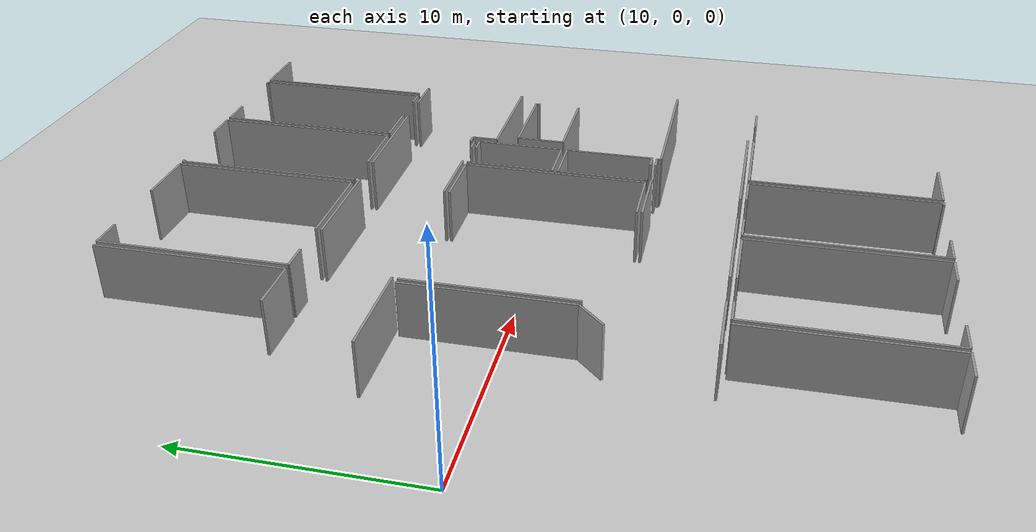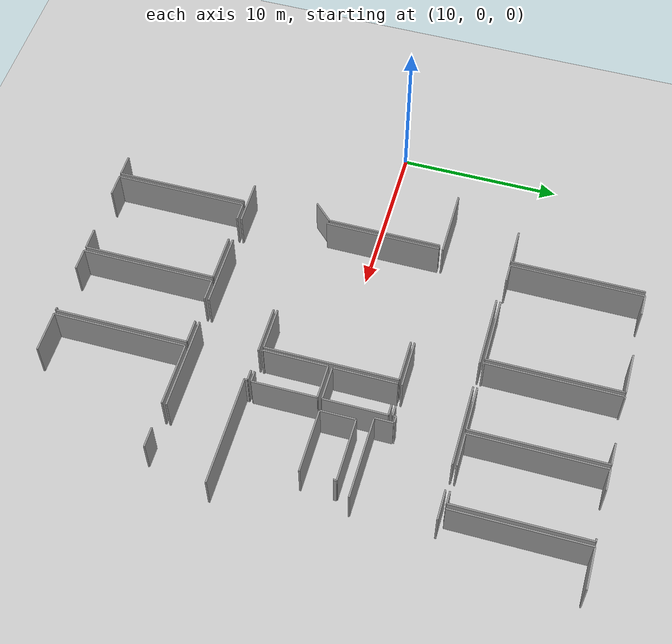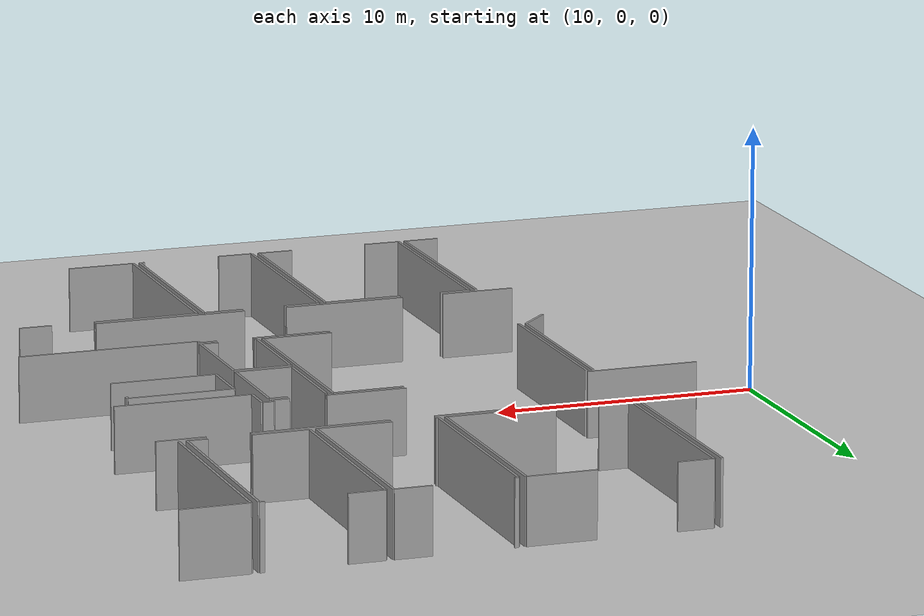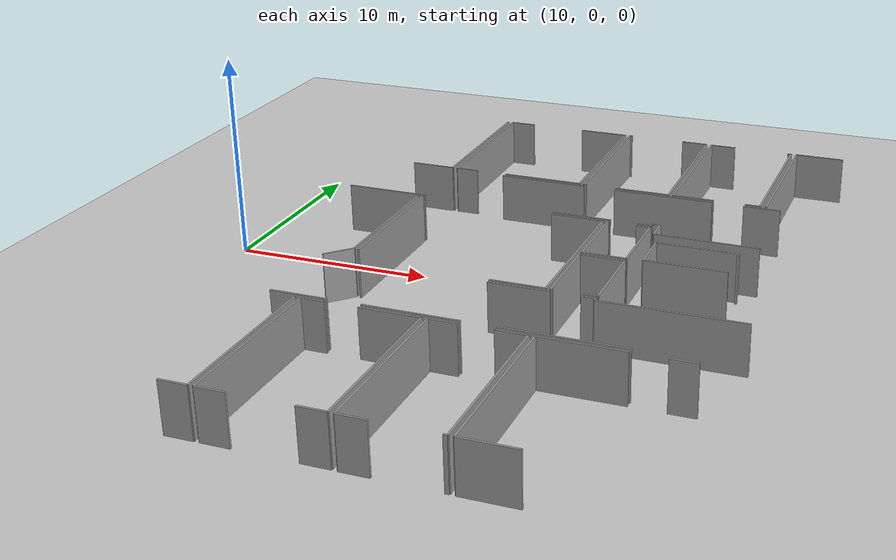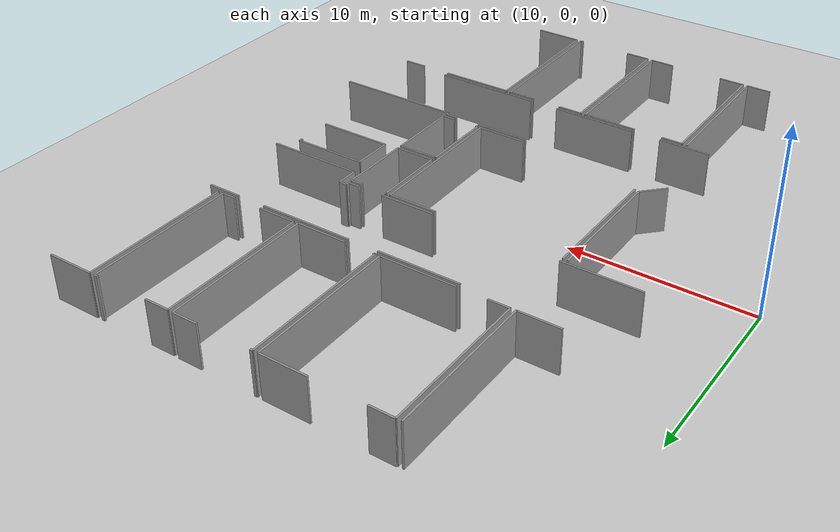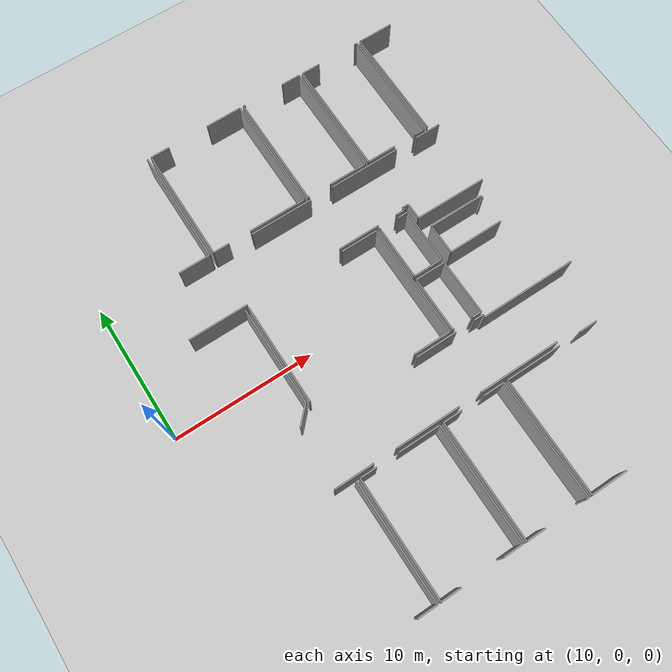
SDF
<sdf version="1.6">
 <world name="default">
  <model name="ground_plane">
   <static>1</static>
   <link name="link">
    <collision name="collision">
     <geometry><plane><normal>0 0 1</normal><size>100 100</size></plane></geometry>
     <surface><friction><ode><mu>100</mu><mu2>50</mu2></ode></friction></surface>
    </collision>
    <visual name="visual">
     <cast_shadows>0</cast_shadows>
     <geometry><plane><normal>0 0 1</normal><size>100 100</size></plane></geometry>
     <material>
      <script><uri>file://media/materials/scripts/gazebo.material</uri><name>Gazebo/Grey</name></script>
     </material>
    </visual>
   </link>
  </model>
  <model name="50041173">
   <static>1</static>
   <link name="Wall_49">
    <collision name="Wall_49_Collision">
     <geometry><box><size>0.408997435832 0.1 2.5</size></box></geometry>
     <pose>0.204498717916 0 1.25 0 0 0</pose>
    </collision>
    <visual name="Wall_49_Visual">
     <pose>0.204498717916 0 1.25 0 0 0</pose>
     <geometry><box><size>0.408997435832 0.1 2.5</size></box></geometry>
     <material>
      <script><uri>file://media/materials/scripts/gazebo.material</uri><name>Gazebo/Grey</name></script>
      <ambient>1 1 1 1</ambient>
     </material>
    </visual>
    <pose>96.199446546 -12.2639569423 0 0 0 3.14159265359</pose>
   </link>
   <link name="Wall_50">
    <collision name="Wall_50_Collision">
     <geometry><box><size>0.19853258524 0.1 2.5</size></box></geometry>
     <pose>0.0992662926198 0 1.25 0 0 0</pose>
    </collision>
    <visual name="Wall_50_Visual">
     <pose>0.0992662926198 0 1.25 0 0 0</pose>
     <geometry><box><size>0.19853258524 0.1 2.5</size></box></geometry>
     <material>
      <script><uri>file://media/materials/scripts/gazebo.material</uri><name>Gazebo/Grey</name></script>
      <ambient>1 1 1 1</ambient>
     </material>
    </visual>
    <pose>95.7904491102 -12.2639569423 0 0 0 -1.57079632679</pose>
   </link>
   <link name="Wall_51">
    <collision name="Wall_51_Collision">
     <geometry><box><size>0.659321130265 0.1 2.5</size></box></geometry>
     <pose>0.329660565132 0 1.25 0 0 0</pose>
    </collision>
    <visual name="Wall_51_Visual">
     <pose>0.329660565132 0 1.25 0 0 0</pose>
     <geometry><box><size>0.659321130265 0.1 2.5</size></box></geometry>
     <material>
      <script><uri>file://media/materials/scripts/gazebo.material</uri><name>Gazebo/Grey</name></script>
      <ambient>1 1 1 1</ambient>
     </material>
    </visual>
    <pose>95.7904491102 -12.4624895275 0 0 0 3.14159265359</pose>
   </link>
   <link name="Wall_52">
    <collision name="Wall_52_Collision">
     <geometry><box><size>2.99474472568 0.1 2.5</size></box></geometry>
     <pose>1.49737236284 0 1.25 0 0 0</pose>
    </collision>
    <visual name="Wall_52_Visual">
     <pose>1.49737236284 0 1.25 0 0 0</pose>
     <geometry><box><size>2.99474472568 0.1 2.5</size></box></geometry>
     <material>
      <script><uri>file://media/materials/scripts/gazebo.material</uri><name>Gazebo/Grey</name></script>
      <ambient>1 1 1 1</ambient>
     </material>
    </visual>
    <pose>93.726040265 -12.4624895275 0 0 0 3.14159265359</pose>
   </link>
   <link name="Wall_53">
    <collision name="Wall_53_Collision">
     <geometry><box><size>4.23163827465 0.1 2.5</size></box></geometry>
     <pose>2.11581913732 0 1.25 0 0 0</pose>
    </collision>
    <visual name="Wall_53_Visual">
     <pose>2.11581913732 0 1.25 0 0 0</pose>
     <geometry><box><size>4.23163827465 0.1 2.5</size></box></geometry>
     <material>
      <script><uri>file://media/materials/scripts/gazebo.material</uri><name>Gazebo/Grey</name></script>
      <ambient>1 1 1 1</ambient>
     </material>
    </visual>
    <pose>83.7736423875 -12.4624895275 0 0 0 3.14159265359</pose>
   </link>
   <link name="Wall_59">
    <collision name="Wall_59_Collision">
     <geometry><box><size>4.52550204372 0.1 2.5</size></box></geometry>
     <pose>2.26275102186 0 1.25 0 0 0</pose>
    </collision>
    <visual name="Wall_59_Visual">
     <pose>2.26275102186 0 1.25 0 0 0</pose>
     <geometry><box><size>4.52550204372 0.1 2.5</size></box></geometry>
     <material>
      <script><uri>file://media/materials/scripts/gazebo.material</uri><name>Gazebo/Grey</name></script>
      <ambient>1 1 1 1</ambient>
     </material>
    </visual>
    <pose>86.5034654345 -8.49577293153 0 0 0 0.0</pose>
   </link>
   <link name="Wall_60">
    <collision name="Wall_60_Collision">
     <geometry><box><size>5.16476681307 0.1 2.5</size></box></geometry>
     <pose>2.58238340653 0 1.25 0 0 0</pose>
    </collision>
    <visual name="Wall_60_Visual">
     <pose>2.58238340653 0 1.25 0 0 0</pose>
     <geometry><box><size>5.16476681307 0.1 2.5</size></box></geometry>
     <material>
      <script><uri>file://media/materials/scripts/gazebo.material</uri><name>Gazebo/Grey</name></script>
      <ambient>1 1 1 1</ambient>
     </material>
    </visual>
    <pose>92.6956764579 -8.49577293153 0 0 0 0.0</pose>
   </link>
   <link name="Wall_61">
    <collision name="Wall_61_Collision">
     <geometry><box><size>1.85330929955 0.1 2.5</size></box></geometry>
     <pose>0.926654649775 0 1.25 0 0 0</pose>
    </collision>
    <visual name="Wall_61_Visual">
     <pose>0.926654649775 0 1.25 0 0 0</pose>
     <geometry><box><size>1.85330929955 0.1 2.5</size></box></geometry>
     <material>
      <script><uri>file://media/materials/scripts/gazebo.material</uri><name>Gazebo/Grey</name></script>
      <ambient>1 1 1 1</ambient>
     </material>
    </visual>
    <pose>99.483612176 -8.49577293153 0 0 0 0.0</pose>
   </link>
   <link name="Wall_78">
    <collision name="Wall_78_Collision">
     <geometry><box><size>2.2675112341 0.1 2.5</size></box></geometry>
     <pose>1.13375561705 0 1.25 0 0 0</pose>
    </collision>
    <visual name="Wall_78_Visual">
     <pose>1.13375561705 0 1.25 0 0 0</pose>
     <geometry><box><size>2.2675112341 0.1 2.5</size></box></geometry>
     <material>
      <script><uri>file://media/materials/scripts/gazebo.material</uri><name>Gazebo/Grey</name></script>
      <ambient>1 1 1 1</ambient>
     </material>
    </visual>
    <pose>83.4892990429 -8.25319251568 0 0 0 3.14159265359</pose>
   </link>
   <link name="Wall_83">
    <collision name="Wall_83_Collision">
     <geometry><box><size>8.2498953871 0.1 2.5</size></box></geometry>
     <pose>4.12494769355 0 1.25 0 0 0</pose>
    </collision>
    <visual name="Wall_83_Visual">
     <pose>4.12494769355 0 1.25 0 0 0</pose>
     <geometry><box><size>8.2498953871 0.1 2.5</size></box></geometry>
     <material>
      <script><uri>file://media/materials/scripts/gazebo.material</uri><name>Gazebo/Grey</name></script>
      <ambient>1 1 1 1</ambient>
     </material>
    </visual>
    <pose>83.4819365813 -0.00330041382112 0 0 0 -1.56990389577</pose>
   </link>
   <link name="Wall_84">
    <collision name="Wall_84_Collision">
     <geometry><box><size>4.14849323415 0.1 2.5</size></box></geometry>
     <pose>2.07424661708 0 1.25 0 0 0</pose>
    </collision>
    <visual name="Wall_84_Visual">
     <pose>2.07424661708 0 1.25 0 0 0</pose>
     <geometry><box><size>4.14849323415 0.1 2.5</size></box></geometry>
     <material>
      <script><uri>file://media/materials/scripts/gazebo.material</uri><name>Gazebo/Grey</name></script>
      <ambient>1 1 1 1</ambient>
     </material>
    </visual>
    <pose>90.6994338521 -8.24049861636 0 0 0 3.14159265359</pose>
   </link>
   <link name="Wall_85">
    <collision name="Wall_85_Collision">
     <geometry><box><size>1.15514483739 0.1 2.5</size></box></geometry>
     <pose>0.577572418696 0 1.25 0 0 0</pose>
    </collision>
    <visual name="Wall_85_Visual">
     <pose>0.577572418696 0 1.25 0 0 0</pose>
     <geometry><box><size>1.15514483739 0.1 2.5</size></box></geometry>
     <material>
      <script><uri>file://media/materials/scripts/gazebo.material</uri><name>Gazebo/Grey</name></script>
      <ambient>1 1 1 1</ambient>
     </material>
    </visual>
    <pose>84.9237096651 -8.24049861636 0 0 0 3.14159265359</pose>
   </link>
   <link name="Wall_86">
    <collision name="Wall_86_Collision">
     <geometry><box><size>8.23516717865 0.1 2.5</size></box></geometry>
     <pose>4.11758358933 0 1.25 0 0 0</pose>
    </collision>
    <visual name="Wall_86_Visual">
     <pose>4.11758358933 0 1.25 0 0 0</pose>
     <geometry><box><size>8.23516717865 0.1 2.5</size></box></geometry>
     <material>
      <script><uri>file://media/materials/scripts/gazebo.material</uri><name>Gazebo/Grey</name></script>
      <ambient>1 1 1 1</ambient>
     </material>
    </visual>
    <pose>83.7685648277 -8.24049861636 0 0 0 1.57079632679</pose>
   </link>
   <link name="Wall_87">
    <collision name="Wall_87_Collision">
     <geometry><box><size>1.34809210693 0.1 2.5</size></box></geometry>
     <pose>0.674046053467 0 1.25 0 0 0</pose>
    </collision>
    <visual name="Wall_87_Visual">
     <pose>0.674046053467 0 1.25 0 0 0</pose>
     <geometry><box><size>1.34809210693 0.1 2.5</size></box></geometry>
     <material>
      <script><uri>file://media/materials/scripts/gazebo.material</uri><name>Gazebo/Grey</name></script>
      <ambient>1 1 1 1</ambient>
     </material>
    </visual>
    <pose>83.7685648277 -0.00533143771104 0 0 0 0.0</pose>
   </link>
   <link name="Wall_88">
    <collision name="Wall_88_Collision">
     <geometry><box><size>2.59577547031 0.1 2.5</size></box></geometry>
     <pose>1.29788773515 0 1.25 0 0 0</pose>
    </collision>
    <visual name="Wall_88_Visual">
     <pose>1.29788773515 0 1.25 0 0 0</pose>
     <geometry><box><size>2.59577547031 0.1 2.5</size></box></geometry>
     <material>
      <script><uri>file://media/materials/scripts/gazebo.material</uri><name>Gazebo/Grey</name></script>
      <ambient>1 1 1 1</ambient>
     </material>
    </visual>
    <pose>88.0899489705 -0.00533143771104 0 0 0 0.0</pose>
   </link>
   <link name="Wall_89">
    <collision name="Wall_89_Collision">
     <geometry><box><size>8.23517858995 0.1 2.5</size></box></geometry>
     <pose>4.11758929497 0 1.25 0 0 0</pose>
    </collision>
    <visual name="Wall_89_Visual">
     <pose>4.11758929497 0 1.25 0 0 0</pose>
     <geometry><box><size>8.23517858995 0.1 2.5</size></box></geometry>
     <material>
      <script><uri>file://media/materials/scripts/gazebo.material</uri><name>Gazebo/Grey</name></script>
      <ambient>1 1 1 1</ambient>
     </material>
    </visual>
    <pose>90.6857244408 -0.00533143771104 0 0 0 -1.56913158845</pose>
   </link>
   <link name="Wall_90">
    <collision name="Wall_90_Collision">
     <geometry><box><size>2.80370154104 0.1 2.5</size></box></geometry>
     <pose>1.40185077052 0 1.25 0 0 0</pose>
    </collision>
    <visual name="Wall_90_Visual">
     <pose>1.40185077052 0 1.25 0 0 0</pose>
     <geometry><box><size>2.80370154104 0.1 2.5</size></box></geometry>
     <material>
      <script><uri>file://media/materials/scripts/gazebo.material</uri><name>Gazebo/Grey</name></script>
      <ambient>1 1 1 1</ambient>
     </material>
    </visual>
    <pose>95.5104216913 -8.25319251568 0 0 0 3.14159265359</pose>
   </link>
   <link name="Wall_91">
    <collision name="Wall_91_Collision">
     <geometry><box><size>0.108405900124 0.1 2.5</size></box></geometry>
     <pose>0.0542029500622 0 1.25 0 0 0</pose>
    </collision>
    <visual name="Wall_91_Visual">
     <pose>0.0542029500622 0 1.25 0 0 0</pose>
     <geometry><box><size>0.108405900124 0.1 2.5</size></box></geometry>
     <material>
      <script><uri>file://media/materials/scripts/gazebo.material</uri><name>Gazebo/Grey</name></script>
      <ambient>1 1 1 1</ambient>
     </material>
    </visual>
    <pose>91.0746655158 -8.25319251568 0 0 0 3.14159265359</pose>
   </link>
   <link name="Wall_92">
    <collision name="Wall_92_Collision">
     <geometry><box><size>8.25217700373 0.1 2.5</size></box></geometry>
     <pose>4.12608850187 0 1.25 0 0 0</pose>
    </collision>
    <visual name="Wall_92_Visual">
     <pose>4.12608850187 0 1.25 0 0 0</pose>
     <geometry><box><size>8.25217700373 0.1 2.5</size></box></geometry>
     <material>
      <script><uri>file://media/materials/scripts/gazebo.material</uri><name>Gazebo/Grey</name></script>
      <ambient>1 1 1 1</ambient>
     </material>
    </visual>
    <pose>90.9662596156 -8.25319251568 0 0 0 1.57079632679</pose>
   </link>
   <link name="Wall_93">
    <collision name="Wall_93_Collision">
     <geometry><box><size>0.143694940212 0.1 2.5</size></box></geometry>
     <pose>0.0718474701059 0 1.25 0 0 0</pose>
    </collision>
    <visual name="Wall_93_Visual">
     <pose>0.0718474701059 0 1.25 0 0 0</pose>
     <geometry><box><size>0.143694940212 0.1 2.5</size></box></geometry>
     <material>
      <script><uri>file://media/materials/scripts/gazebo.material</uri><name>Gazebo/Grey</name></script>
      <ambient>1 1 1 1</ambient>
     </material>
    </visual>
    <pose>90.9662596156 -0.00101551194496 0 0 0 0.0</pose>
   </link>
   <link name="Wall_94">
    <collision name="Wall_94_Collision">
     <geometry><box><size>1.38833176775 0.1 2.5</size></box></geometry>
     <pose>0.694165883876 0 1.25 0 0 0</pose>
    </collision>
    <visual name="Wall_94_Visual">
     <pose>0.694165883876 0 1.25 0 0 0</pose>
     <geometry><box><size>1.38833176775 0.1 2.5</size></box></geometry>
     <material>
      <script><uri>file://media/materials/scripts/gazebo.material</uri><name>Gazebo/Grey</name></script>
      <ambient>1 1 1 1</ambient>
     </material>
    </visual>
    <pose>94.0888319074 -0.00101551194496 0 0 0 0.0</pose>
   </link>
   <link name="Wall_95">
    <collision name="Wall_95_Collision">
     <geometry><box><size>8.25224402187 0.1 2.5</size></box></geometry>
     <pose>4.12612201094 0 1.25 0 0 0</pose>
    </collision>
    <visual name="Wall_95_Visual">
     <pose>4.12612201094 0 1.25 0 0 0</pose>
     <geometry><box><size>8.25224402187 0.1 2.5</size></box></geometry>
     <material>
      <script><uri>file://media/materials/scripts/gazebo.material</uri><name>Gazebo/Grey</name></script>
      <ambient>1 1 1 1</ambient>
     </material>
    </visual>
    <pose>95.4771636751 -0.00101551194496 0 0 0 -1.56676613741</pose>
   </link>
   <link name="Wall_96">
    <collision name="Wall_96_Collision">
     <geometry><box><size>0.754906192084 0.1 2.5</size></box></geometry>
     <pose>0.377453096042 0 1.25 0 0 0</pose>
    </collision>
    <visual name="Wall_96_Visual">
     <pose>0.377453096042 0 1.25 0 0 0</pose>
     <geometry><box><size>0.754906192084 0.1 2.5</size></box></geometry>
     <material>
      <script><uri>file://media/materials/scripts/gazebo.material</uri><name>Gazebo/Grey</name></script>
      <ambient>1 1 1 1</ambient>
     </material>
    </visual>
    <pose>100.267841275 -8.23504023966 0 0 0 3.14159265359</pose>
   </link>
   <link name="Wall_97">
    <collision name="Wall_97_Collision">
     <geometry><box><size>2.12089669705 0.1 2.5</size></box></geometry>
     <pose>1.06044834852 0 1.25 0 0 0</pose>
    </collision>
    <visual name="Wall_97_Visual">
     <pose>1.06044834852 0 1.25 0 0 0</pose>
     <geometry><box><size>2.12089669705 0.1 2.5</size></box></geometry>
     <material>
      <script><uri>file://media/materials/scripts/gazebo.material</uri><name>Gazebo/Grey</name></script>
      <ambient>1 1 1 1</ambient>
     </material>
    </visual>
    <pose>97.8841808627 -8.23504023966 0 0 0 3.14159265359</pose>
   </link>
   <link name="Wall_98">
    <collision name="Wall_98_Collision">
     <geometry><box><size>8.22361573028 0.1 2.5</size></box></geometry>
     <pose>4.11180786514 0 1.25 0 0 0</pose>
    </collision>
    <visual name="Wall_98_Visual">
     <pose>4.11180786514 0 1.25 0 0 0</pose>
     <geometry><box><size>8.22361573028 0.1 2.5</size></box></geometry>
     <material>
      <script><uri>file://media/materials/scripts/gazebo.material</uri><name>Gazebo/Grey</name></script>
      <ambient>1 1 1 1</ambient>
     </material>
    </visual>
    <pose>95.7632841656 -8.23504023966 0 0 0 1.57079632679</pose>
   </link>
   <link name="Wall_99">
    <collision name="Wall_99_Collision">
     <geometry><box><size>1.3560892635 0.1 2.5</size></box></geometry>
     <pose>0.67804463175 0 1.25 0 0 0</pose>
    </collision>
    <visual name="Wall_99_Visual">
     <pose>0.67804463175 0 1.25 0 0 0</pose>
     <geometry><box><size>1.3560892635 0.1 2.5</size></box></geometry>
     <material>
      <script><uri>file://media/materials/scripts/gazebo.material</uri><name>Gazebo/Grey</name></script>
      <ambient>1 1 1 1</ambient>
     </material>
    </visual>
    <pose>95.7632841656 -0.0114245093808 0 0 0 0.0</pose>
   </link>
   <link name="Wall_100">
    <collision name="Wall_100_Collision">
     <geometry><box><size>0.184950112976 0.1 2.5</size></box></geometry>
     <pose>0.0924750564878 0 1.25 0 0 0</pose>
    </collision>
    <visual name="Wall_100_Visual">
     <pose>0.0924750564878 0 1.25 0 0 0</pose>
     <geometry><box><size>0.184950112976 0.1 2.5</size></box></geometry>
     <material>
      <script><uri>file://media/materials/scripts/gazebo.material</uri><name>Gazebo/Grey</name></script>
      <ambient>1 1 1 1</ambient>
     </material>
    </visual>
    <pose>100.095077306 -0.0114245093808 0 0 0 0.0</pose>
   </link>
   <link name="Wall_101">
    <collision name="Wall_101_Collision">
     <geometry><box><size>8.22362475928 0.1 2.5</size></box></geometry>
     <pose>4.11181237964 0 1.25 0 0 0</pose>
    </collision>
    <visual name="Wall_101_Visual">
     <pose>4.11181237964 0 1.25 0 0 0</pose>
     <geometry><box><size>8.22362475928 0.1 2.5</size></box></geometry>
     <material>
      <script><uri>file://media/materials/scripts/gazebo.material</uri><name>Gazebo/Grey</name></script>
      <ambient>1 1 1 1</ambient>
     </material>
    </visual>
    <pose>100.280027419 -0.0114245093808 0 0 0 -1.57227817308</pose>
   </link>
   <link name="Wall_104">
    <collision name="Wall_104_Collision">
     <geometry><box><size>8.22666226611 0.1 2.5</size></box></geometry>
     <pose>4.11333113306 0 1.25 0 0 0</pose>
    </collision>
    <visual name="Wall_104_Visual">
     <pose>4.11333113306 0 1.25 0 0 0</pose>
     <geometry><box><size>8.22666226611 0.1 2.5</size></box></geometry>
     <material>
      <script><uri>file://media/materials/scripts/gazebo.material</uri><name>Gazebo/Grey</name></script>
      <ambient>1 1 1 1</ambient>
     </material>
    </visual>
    <pose>100.573002615 -8.22666226611 0 0 0 1.57079632679</pose>
   </link>
   <link name="Wall_105">
    <collision name="Wall_105_Collision">
     <geometry><box><size>2.55236233466 0.1 2.5</size></box></geometry>
     <pose>1.27618116733 0 1.25 0 0 0</pose>
    </collision>
    <visual name="Wall_105_Visual">
     <pose>1.27618116733 0 1.25 0 0 0</pose>
     <geometry><box><size>2.55236233466 0.1 2.5</size></box></geometry>
     <material>
      <script><uri>file://media/materials/scripts/gazebo.material</uri><name>Gazebo/Grey</name></script>
      <ambient>1 1 1 1</ambient>
     </material>
    </visual>
    <pose>100.573002615 -0.0 0 0 0 0.0</pose>
   </link>
   <link name="Wall_130">
    <collision name="Wall_130_Collision">
     <geometry><box><size>5.8061895453 0.1 2.5</size></box></geometry>
     <pose>2.90309477265 0 1.25 0 0 0</pose>
    </collision>
    <visual name="Wall_130_Visual">
     <pose>2.90309477265 0 1.25 0 0 0</pose>
     <geometry><box><size>5.8061895453 0.1 2.5</size></box></geometry>
     <material>
      <script><uri>file://media/materials/scripts/gazebo.material</uri><name>Gazebo/Grey</name></script>
      <ambient>1 1 1 1</ambient>
     </material>
    </visual>
    <pose>98.5949122852 -25.056107035 0 0 0 3.14159265359</pose>
   </link>
   <link name="Wall_131">
    <collision name="Wall_131_Collision">
     <geometry><box><size>4.60864708421 0.1 2.5</size></box></geometry>
     <pose>2.30432354211 0 1.25 0 0 0</pose>
    </collision>
    <visual name="Wall_131_Visual">
     <pose>2.30432354211 0 1.25 0 0 0</pose>
     <geometry><box><size>4.60864708421 0.1 2.5</size></box></geometry>
     <material>
      <script><uri>file://media/materials/scripts/gazebo.material</uri><name>Gazebo/Grey</name></script>
      <ambient>1 1 1 1</ambient>
     </material>
    </visual>
    <pose>91.1388966463 -25.056107035 0 0 0 3.14159265359</pose>
   </link>
   <link name="Wall_132">
    <collision name="Wall_132_Collision">
     <geometry><box><size>2.77996394933 0.1 2.5</size></box></geometry>
     <pose>1.38998197466 0 1.25 0 0 0</pose>
    </collision>
    <visual name="Wall_132_Visual">
     <pose>1.38998197466 0 1.25 0 0 0</pose>
     <geometry><box><size>2.77996394933 0.1 2.5</size></box></geometry>
     <material>
      <script><uri>file://media/materials/scripts/gazebo.material</uri><name>Gazebo/Grey</name></script>
      <ambient>1 1 1 1</ambient>
     </material>
    </visual>
    <pose>84.8983218665 -25.056107035 0 0 0 3.14159265359</pose>
   </link>
   <link name="Wall_156">
    <collision name="Wall_156_Collision">
     <geometry><box><size>2.96631039123 0.1 2.5</size></box></geometry>
     <pose>1.48315519561 0 1.25 0 0 0</pose>
    </collision>
    <visual name="Wall_156_Visual">
     <pose>1.48315519561 0 1.25 0 0 0</pose>
     <geometry><box><size>2.96631039123 0.1 2.5</size></box></geometry>
     <material>
      <script><uri>file://media/materials/scripts/gazebo.material</uri><name>Gazebo/Grey</name></script>
      <ambient>1 1 1 1</ambient>
     </material>
    </visual>
    <pose>90.7491939374 -21.1053847521 0 0 0 0.0</pose>
   </link>
   <link name="Wall_157">
    <collision name="Wall_157_Collision">
     <geometry><box><size>0.66807992079 0.1 2.5</size></box></geometry>
     <pose>0.334039960395 0 1.25 0 0 0</pose>
    </collision>
    <visual name="Wall_157_Visual">
     <pose>0.334039960395 0 1.25 0 0 0</pose>
     <geometry><box><size>0.66807992079 0.1 2.5</size></box></geometry>
     <material>
      <script><uri>file://media/materials/scripts/gazebo.material</uri><name>Gazebo/Grey</name></script>
      <ambient>1 1 1 1</ambient>
     </material>
    </visual>
    <pose>95.1210997994 -21.1053847521 0 0 0 0.0</pose>
   </link>
   <link name="Wall_158">
    <collision name="Wall_158_Collision">
     <geometry><box><size>0.184696234989 0.1 2.5</size></box></geometry>
     <pose>0.0923481174947 0 1.25 0 0 0</pose>
    </collision>
    <visual name="Wall_158_Visual">
     <pose>0.0923481174947 0 1.25 0 0 0</pose>
     <geometry><box><size>0.184696234989 0.1 2.5</size></box></geometry>
     <material>
      <script><uri>file://media/materials/scripts/gazebo.material</uri><name>Gazebo/Grey</name></script>
      <ambient>1 1 1 1</ambient>
     </material>
    </visual>
    <pose>95.7891797202 -21.1053847521 0 0 0 -1.57079632679</pose>
   </link>
   <link name="Wall_159">
    <collision name="Wall_159_Collision">
     <geometry><box><size>6.86206809008 0.1 2.5</size></box></geometry>
     <pose>3.43103404504 0 1.25 0 0 0</pose>
    </collision>
    <visual name="Wall_159_Visual">
     <pose>3.43103404504 0 1.25 0 0 0</pose>
     <geometry><box><size>6.86206809008 0.1 2.5</size></box></geometry>
     <material>
      <script><uri>file://media/materials/scripts/gazebo.material</uri><name>Gazebo/Grey</name></script>
      <ambient>1 1 1 1</ambient>
     </material>
    </visual>
    <pose>95.7891797202 -21.2900809871 0 0 0 0.0</pose>
   </link>
   <link name="Wall_176">
    <collision name="Wall_176_Collision">
     <geometry><box><size>2.58384320496 0.1 2.5</size></box></geometry>
     <pose>1.29192160248 0 1.25 0 0 0</pose>
    </collision>
    <visual name="Wall_176_Visual">
     <pose>1.29192160248 0 1.25 0 0 0</pose>
     <geometry><box><size>2.58384320496 0.1 2.5</size></box></geometry>
     <material>
      <script><uri>file://media/materials/scripts/gazebo.material</uri><name>Gazebo/Grey</name></script>
      <ambient>1 1 1 1</ambient>
     </material>
    </visual>
    <pose>97.1484424586 -33.5560689533 0 0 0 3.14159265359</pose>
   </link>
   <link name="Wall_177">
    <collision name="Wall_177_Collision">
     <geometry><box><size>8.22945492396 0.1 2.5</size></box></geometry>
     <pose>4.11472746198 0 1.25 0 0 0</pose>
    </collision>
    <visual name="Wall_177_Visual">
     <pose>4.11472746198 0 1.25 0 0 0</pose>
     <geometry><box><size>8.22945492396 0.1 2.5</size></box></geometry>
     <material>
      <script><uri>file://media/materials/scripts/gazebo.material</uri><name>Gazebo/Grey</name></script>
      <ambient>1 1 1 1</ambient>
     </material>
    </visual>
    <pose>94.5645992536 -33.5560689533 0 0 0 1.57079632679</pose>
   </link>
   <link name="Wall_178">
    <collision name="Wall_178_Collision">
     <geometry><box><size>4.00632156186 0.1 2.5</size></box></geometry>
     <pose>2.00316078093 0 1.25 0 0 0</pose>
    </collision>
    <visual name="Wall_178_Visual">
     <pose>2.00316078093 0 1.25 0 0 0</pose>
     <geometry><box><size>4.00632156186 0.1 2.5</size></box></geometry>
     <material>
      <script><uri>file://media/materials/scripts/gazebo.material</uri><name>Gazebo/Grey</name></script>
      <ambient>1 1 1 1</ambient>
     </material>
    </visual>
    <pose>94.5645992536 -25.3266140293 0 0 0 0.0</pose>
   </link>
   <link name="Wall_179">
    <collision name="Wall_179_Collision">
     <geometry><box><size>1.24781030237 0.1 2.5</size></box></geometry>
     <pose>0.623905151184 0 1.25 0 0 0</pose>
    </collision>
    <visual name="Wall_179_Visual">
     <pose>0.623905151184 0 1.25 0 0 0</pose>
     <geometry><box><size>1.24781030237 0.1 2.5</size></box></geometry>
     <material>
      <script><uri>file://media/materials/scripts/gazebo.material</uri><name>Gazebo/Grey</name></script>
      <ambient>1 1 1 1</ambient>
     </material>
    </visual>
    <pose>100.226586103 -25.3266140293 0 0 0 0.0</pose>
   </link>
   <link name="Wall_181">
    <collision name="Wall_181_Collision">
     <geometry><box><size>0.183553784051 0.1 2.5</size></box></geometry>
     <pose>0.0917768920257 0 1.25 0 0 0</pose>
    </collision>
    <visual name="Wall_181_Visual">
     <pose>0.0917768920257 0 1.25 0 0 0</pose>
     <geometry><box><size>0.183553784051 0.1 2.5</size></box></geometry>
     <material>
      <script><uri>file://media/materials/scripts/gazebo.material</uri><name>Gazebo/Grey</name></script>
      <ambient>1 1 1 1</ambient>
     </material>
    </visual>
    <pose>94.3047551347 -33.5540379294 0 0 0 3.14159265359</pose>
   </link>
   <link name="Wall_182">
    <collision name="Wall_182_Collision">
     <geometry><box><size>1.35215415471 0.1 2.5</size></box></geometry>
     <pose>0.676077077357 0 1.25 0 0 0</pose>
    </collision>
    <visual name="Wall_182_Visual">
     <pose>0.676077077357 0 1.25 0 0 0</pose>
     <geometry><box><size>1.35215415471 0.1 2.5</size></box></geometry>
     <material>
      <script><uri>file://media/materials/scripts/gazebo.material</uri><name>Gazebo/Grey</name></script>
      <ambient>1 1 1 1</ambient>
     </material>
    </visual>
    <pose>91.124806418 -33.5540379294 0 0 0 3.14159265359</pose>
   </link>
   <link name="Wall_183">
    <collision name="Wall_183_Collision">
     <geometry><box><size>8.23339003275 0.1 2.5</size></box></geometry>
     <pose>4.11669501638 0 1.25 0 0 0</pose>
    </collision>
    <visual name="Wall_183_Visual">
     <pose>4.11669501638 0 1.25 0 0 0</pose>
     <geometry><box><size>8.23339003275 0.1 2.5</size></box></geometry>
     <material>
      <script><uri>file://media/materials/scripts/gazebo.material</uri><name>Gazebo/Grey</name></script>
      <ambient>1 1 1 1</ambient>
     </material>
    </visual>
    <pose>89.7726522633 -33.5540379294 0 0 0 1.57079632679</pose>
   </link>
   <link name="Wall_184">
    <collision name="Wall_184_Collision">
     <geometry><box><size>1.35469293458 0.1 2.5</size></box></geometry>
     <pose>0.677346467288 0 1.25 0 0 0</pose>
    </collision>
    <visual name="Wall_184_Visual">
     <pose>0.677346467288 0 1.25 0 0 0</pose>
     <geometry><box><size>1.35469293458 0.1 2.5</size></box></geometry>
     <material>
      <script><uri>file://media/materials/scripts/gazebo.material</uri><name>Gazebo/Grey</name></script>
      <ambient>1 1 1 1</ambient>
     </material>
    </visual>
    <pose>89.7726522633 -25.3206478966 0 0 0 0.0</pose>
   </link>
   <link name="Wall_185">
    <collision name="Wall_185_Collision">
     <geometry><box><size>1.50397319048 0.1 2.5</size></box></geometry>
     <pose>0.751986595242 0 1.25 0 0 0</pose>
    </collision>
    <visual name="Wall_185_Visual">
     <pose>0.751986595242 0 1.25 0 0 0</pose>
     <geometry><box><size>1.50397319048 0.1 2.5</size></box></geometry>
     <material>
      <script><uri>file://media/materials/scripts/gazebo.material</uri><name>Gazebo/Grey</name></script>
      <ambient>1 1 1 1</ambient>
     </material>
    </visual>
    <pose>92.7812333393 -25.3206478966 0 0 0 0.0</pose>
   </link>
   <link name="Wall_186">
    <collision name="Wall_186_Collision">
     <geometry><box><size>8.23341323992 0.1 2.5</size></box></geometry>
     <pose>4.11670661996 0 1.25 0 0 0</pose>
    </collision>
    <visual name="Wall_186_Visual">
     <pose>4.11670661996 0 1.25 0 0 0</pose>
     <geometry><box><size>8.23341323992 0.1 2.5</size></box></geometry>
     <material>
      <script><uri>file://media/materials/scripts/gazebo.material</uri><name>Gazebo/Grey</name></script>
      <ambient>1 1 1 1</ambient>
     </material>
    </visual>
    <pose>94.2852065297 -25.3206478966 0 0 0 -1.56842202312</pose>
   </link>
   <link name="Wall_187">
    <collision name="Wall_187_Collision">
     <geometry><box><size>1.35329660565 0.1 2.5</size></box></geometry>
     <pose>0.676648302826 0 1.25 0 0 0</pose>
    </collision>
    <visual name="Wall_187_Visual">
     <pose>0.676648302826 0 1.25 0 0 0</pose>
     <geometry><box><size>1.35329660565 0.1 2.5</size></box></geometry>
     <material>
      <script><uri>file://media/materials/scripts/gazebo.material</uri><name>Gazebo/Grey</name></script>
      <ambient>1 1 1 1</ambient>
     </material>
    </visual>
    <pose>89.4955444413 -33.5369011653 0 0 0 3.14159265359</pose>
   </link>
   <link name="Wall_188">
    <collision name="Wall_188_Collision">
     <geometry><box><size>1.39175912057 0.1 2.5</size></box></geometry>
     <pose>0.695879560283 0 1.25 0 0 0</pose>
    </collision>
    <visual name="Wall_188_Visual">
     <pose>0.695879560283 0 1.25 0 0 0</pose>
     <geometry><box><size>1.39175912057 0.1 2.5</size></box></geometry>
     <material>
      <script><uri>file://media/materials/scripts/gazebo.material</uri><name>Gazebo/Grey</name></script>
      <ambient>1 1 1 1</ambient>
     </material>
    </visual>
    <pose>85.14750311 -33.5369011653 0 0 0 3.14159265359</pose>
   </link>
   <link name="Wall_189">
    <collision name="Wall_189_Collision">
     <geometry><box><size>8.210287136 0.1 2.5</size></box></geometry>
     <pose>4.105143568 0 1.25 0 0 0</pose>
    </collision>
    <visual name="Wall_189_Visual">
     <pose>4.105143568 0 1.25 0 0 0</pose>
     <geometry><box><size>8.210287136 0.1 2.5</size></box></geometry>
     <material>
      <script><uri>file://media/materials/scripts/gazebo.material</uri><name>Gazebo/Grey</name></script>
      <ambient>1 1 1 1</ambient>
     </material>
    </visual>
    <pose>83.7557439894 -33.5369011653 0 0 0 1.57079632679</pose>
   </link>
   <link name="Wall_190">
    <collision name="Wall_190_Collision">
     <geometry><box><size>1.15603341034 0.1 2.5</size></box></geometry>
     <pose>0.578016705172 0 1.25 0 0 0</pose>
    </collision>
    <visual name="Wall_190_Visual">
     <pose>0.578016705172 0 1.25 0 0 0</pose>
     <geometry><box><size>1.15603341034 0.1 2.5</size></box></geometry>
     <material>
      <script><uri>file://media/materials/scripts/gazebo.material</uri><name>Gazebo/Grey</name></script>
      <ambient>1 1 1 1</ambient>
     </material>
    </visual>
    <pose>83.7557439894 -25.3266140293 0 0 0 0.0</pose>
   </link>
   <link name="Wall_191">
    <collision name="Wall_191_Collision">
     <geometry><box><size>2.97544999873 0.1 2.5</size></box></geometry>
     <pose>1.48772499937 0 1.25 0 0 0</pose>
    </collision>
    <visual name="Wall_191_Visual">
     <pose>1.48772499937 0 1.25 0 0 0</pose>
     <geometry><box><size>2.97544999873 0.1 2.5</size></box></geometry>
     <material>
      <script><uri>file://media/materials/scripts/gazebo.material</uri><name>Gazebo/Grey</name></script>
      <ambient>1 1 1 1</ambient>
     </material>
    </visual>
    <pose>86.5200944426 -25.3266140293 0 0 0 0.0</pose>
   </link>
   <link name="Wall_192">
    <collision name="Wall_192_Collision">
     <geometry><box><size>8.210287136 0.1 2.5</size></box></geometry>
     <pose>4.105143568 0 1.25 0 0 0</pose>
    </collision>
    <visual name="Wall_192_Visual">
     <pose>4.105143568 0 1.25 0 0 0</pose>
     <geometry><box><size>8.210287136 0.1 2.5</size></box></geometry>
     <material>
      <script><uri>file://media/materials/scripts/gazebo.material</uri><name>Gazebo/Grey</name></script>
      <ambient>1 1 1 1</ambient>
     </material>
    </visual>
    <pose>89.4955444413 -25.3266140293 0 0 0 -1.57079632679</pose>
   </link>
   <link name="Wall_193">
    <collision name="Wall_193_Collision">
     <geometry><box><size>1.35875498236 0.1 2.5</size></box></geometry>
     <pose>0.679377491178 0 1.25 0 0 0</pose>
    </collision>
    <visual name="Wall_193_Visual">
     <pose>0.679377491178 0 1.25 0 0 0</pose>
     <geometry><box><size>1.35875498236 0.1 2.5</size></box></geometry>
     <material>
      <script><uri>file://media/materials/scripts/gazebo.material</uri><name>Gazebo/Grey</name></script>
      <ambient>1 1 1 1</ambient>
     </material>
    </visual>
    <pose>83.5019929422 -33.5394399452 0 0 0 3.14159265359</pose>
   </link>
   <link name="Wall_198">
    <collision name="Wall_198_Collision">
     <geometry><box><size>8.22024625225 0.1 2.5</size></box></geometry>
     <pose>4.11012312612 0 1.25 0 0 0</pose>
    </collision>
    <visual name="Wall_198_Visual">
     <pose>4.11012312612 0 1.25 0 0 0</pose>
     <geometry><box><size>8.22024625225 0.1 2.5</size></box></geometry>
     <material>
      <script><uri>file://media/materials/scripts/gazebo.material</uri><name>Gazebo/Grey</name></script>
      <ambient>1 1 1 1</ambient>
     </material>
    </visual>
    <pose>83.4711467669 -25.3192515677 0 0 0 -1.56704385433</pose>
   </link>
   <link name="Wall_330">
    <collision name="Wall_330_Collision">
     <geometry><box><size>7.07697580543 0.1 2.5</size></box></geometry>
     <pose>3.53848790271 0 1.25 0 0 0</pose>
    </collision>
    <visual name="Wall_330_Visual">
     <pose>3.53848790271 0 1.25 0 0 0</pose>
     <geometry><box><size>7.07697580543 0.1 2.5</size></box></geometry>
     <material>
      <script><uri>file://media/materials/scripts/gazebo.material</uri><name>Gazebo/Grey</name></script>
      <ambient>1 1 1 1</ambient>
     </material>
    </visual>
    <pose>83.4819365813 -12.6904719592 0 0 0 -1.57079632679</pose>
   </link>
   <link name="Wall_331">
    <collision name="Wall_331_Collision">
     <geometry><box><size>1.52759652228 0.1 2.5</size></box></geometry>
     <pose>0.763798261142 0 1.25 0 0 0</pose>
    </collision>
    <visual name="Wall_331_Visual">
     <pose>0.763798261142 0 1.25 0 0 0</pose>
     <geometry><box><size>1.52759652228 0.1 2.5</size></box></geometry>
     <material>
      <script><uri>file://media/materials/scripts/gazebo.material</uri><name>Gazebo/Grey</name></script>
      <ambient>1 1 1 1</ambient>
     </material>
    </visual>
    <pose>83.4819365813 -19.7674477646 0 0 0 -2.33809585539</pose>
   </link>
   <link name="Wall_332">
    <collision name="Wall_332_Collision">
     <geometry><box><size>2.675366219 0.1 2.5</size></box></geometry>
     <pose>1.3376831095 0 1.25 0 0 0</pose>
    </collision>
    <visual name="Wall_332_Visual">
     <pose>1.3376831095 0 1.25 0 0 0</pose>
     <geometry><box><size>2.675366219 0.1 2.5</size></box></geometry>
     <material>
      <script><uri>file://media/materials/scripts/gazebo.material</uri><name>Gazebo/Grey</name></script>
      <ambient>1 1 1 1</ambient>
     </material>
    </visual>
    <pose>93.4213866816 -20.8765137475 0 0 0 3.14159265359</pose>
   </link>
   <link name="Wall_333">
    <collision name="Wall_333_Collision">
     <geometry><box><size>2.67295437813 0.1 2.5</size></box></geometry>
     <pose>1.33647718906 0 1.25 0 0 0</pose>
    </collision>
    <visual name="Wall_333_Visual">
     <pose>1.33647718906 0 1.25 0 0 0</pose>
     <geometry><box><size>2.67295437813 0.1 2.5</size></box></geometry>
     <material>
      <script><uri>file://media/materials/scripts/gazebo.material</uri><name>Gazebo/Grey</name></script>
      <ambient>1 1 1 1</ambient>
     </material>
    </visual>
    <pose>90.7347228922 -12.694026251 0 0 0 0.0</pose>
   </link>
   <link name="Wall_334">
    <collision name="Wall_334_Collision">
     <geometry><box><size>8.18249898127 0.1 2.5</size></box></geometry>
     <pose>4.09124949064 0 1.25 0 0 0</pose>
    </collision>
    <visual name="Wall_334_Visual">
     <pose>4.09124949064 0 1.25 0 0 0</pose>
     <geometry><box><size>8.18249898127 0.1 2.5</size></box></geometry>
     <material>
      <script><uri>file://media/materials/scripts/gazebo.material</uri><name>Gazebo/Grey</name></script>
      <ambient>1 1 1 1</ambient>
     </material>
    </visual>
    <pose>93.4076772703 -12.694026251 0 0 0 -1.56912087071</pose>
   </link>
   <link name="Wall_336">
    <collision name="Wall_336_Collision">
     <geometry><box><size>7.16913351443 0.1 2.5</size></box></geometry>
     <pose>3.58456675722 0 1.25 0 0 0</pose>
    </collision>
    <visual name="Wall_336_Visual">
     <pose>3.58456675722 0 1.25 0 0 0</pose>
     <geometry><box><size>7.16913351443 0.1 2.5</size></box></geometry>
     <material>
      <script><uri>file://media/materials/scripts/gazebo.material</uri><name>Gazebo/Grey</name></script>
      <ambient>1 1 1 1</ambient>
     </material>
    </visual>
    <pose>83.7326410927 -19.8582091447 0 0 0 1.57079632679</pose>
   </link>
   <link name="Wall_337">
    <collision name="Wall_337_Collision">
     <geometry><box><size>2.1457767397 0.1 2.5</size></box></geometry>
     <pose>1.07288836985 0 1.25 0 0 0</pose>
    </collision>
    <visual name="Wall_337_Visual">
     <pose>1.07288836985 0 1.25 0 0 0</pose>
     <geometry><box><size>2.1457767397 0.1 2.5</size></box></geometry>
     <material>
      <script><uri>file://media/materials/scripts/gazebo.material</uri><name>Gazebo/Grey</name></script>
      <ambient>1 1 1 1</ambient>
     </material>
    </visual>
    <pose>95.811647922 -16.6371321943 0 0 0 3.14159265359</pose>
   </link>
   <link name="Wall_338">
    <collision name="Wall_338_Collision">
     <geometry><box><size>3.9318083729 0.1 2.5</size></box></geometry>
     <pose>1.96590418645 0 1.25 0 0 0</pose>
    </collision>
    <visual name="Wall_338_Visual">
     <pose>1.96590418645 0 1.25 0 0 0</pose>
     <geometry><box><size>3.9318083729 0.1 2.5</size></box></geometry>
     <material>
      <script><uri>file://media/materials/scripts/gazebo.material</uri><name>Gazebo/Grey</name></script>
      <ambient>1 1 1 1</ambient>
     </material>
    </visual>
    <pose>93.6658711823 -16.6371321943 0 0 0 1.57079632679</pose>
   </link>
   <link name="Wall_339">
    <collision name="Wall_339_Collision">
     <geometry><box><size>0.0496331463099 0.1 2.5</size></box></geometry>
     <pose>0.0248165731549 0 1.25 0 0 0</pose>
    </collision>
    <visual name="Wall_339_Visual">
     <pose>0.0248165731549 0 1.25 0 0 0</pose>
     <geometry><box><size>0.0496331463099 0.1 2.5</size></box></geometry>
     <material>
      <script><uri>file://media/materials/scripts/gazebo.material</uri><name>Gazebo/Grey</name></script>
      <ambient>1 1 1 1</ambient>
     </material>
    </visual>
    <pose>93.6658711823 -12.7053238214 0 0 0 0.0</pose>
   </link>
   <link name="Wall_340">
    <collision name="Wall_340_Collision">
     <geometry><box><size>0.692706085455 0.1 2.5</size></box></geometry>
     <pose>0.346353042728 0 1.25 0 0 0</pose>
    </collision>
    <visual name="Wall_340_Visual">
     <pose>0.346353042728 0 1.25 0 0 0</pose>
     <geometry><box><size>0.692706085455 0.1 2.5</size></box></geometry>
     <material>
      <script><uri>file://media/materials/scripts/gazebo.material</uri><name>Gazebo/Grey</name></script>
      <ambient>1 1 1 1</ambient>
     </material>
    </visual>
    <pose>95.1227500063 -12.7053238214 0 0 0 0.0</pose>
   </link>
   <link name="Wall_341">
    <collision name="Wall_341_Collision">
     <geometry><box><size>3.93181021711 0.1 2.5</size></box></geometry>
     <pose>1.96590510855 0 1.25 0 0 0</pose>
    </collision>
    <visual name="Wall_341_Visual">
     <pose>1.96590510855 0 1.25 0 0 0</pose>
     <geometry><box><size>3.93181021711 0.1 2.5</size></box></geometry>
     <material>
      <script><uri>file://media/materials/scripts/gazebo.material</uri><name>Gazebo/Grey</name></script>
      <ambient>1 1 1 1</ambient>
     </material>
    </visual>
    <pose>95.8154560918 -12.7053238214 0 0 0 -1.57176488076</pose>
   </link>
   <link name="Wall_342">
    <collision name="Wall_342_Collision">
     <geometry><box><size>0.684455050903 0.1 2.5</size></box></geometry>
     <pose>0.342227525451 0 1.25 0 0 0</pose>
    </collision>
    <visual name="Wall_342_Visual">
     <pose>0.342227525451 0 1.25 0 0 0</pose>
     <geometry><box><size>0.684455050903 0.1 2.5</size></box></geometry>
     <material>
      <script><uri>file://media/materials/scripts/gazebo.material</uri><name>Gazebo/Grey</name></script>
      <ambient>1 1 1 1</ambient>
     </material>
    </visual>
    <pose>95.8209144685 -20.8765137475 0 0 0 3.14159265359</pose>
   </link>
   <link name="Wall_343">
    <collision name="Wall_343_Collision">
     <geometry><box><size>0.110436924014 0.1 2.5</size></box></geometry>
     <pose>0.0552184620072 0 1.25 0 0 0</pose>
    </collision>
    <visual name="Wall_343_Visual">
     <pose>0.0552184620072 0 1.25 0 0 0</pose>
     <geometry><box><size>0.110436924014 0.1 2.5</size></box></geometry>
     <material>
      <script><uri>file://media/materials/scripts/gazebo.material</uri><name>Gazebo/Grey</name></script>
      <ambient>1 1 1 1</ambient>
     </material>
    </visual>
    <pose>93.7443194801 -20.8765137475 0 0 0 3.14159265359</pose>
   </link>
   <link name="Wall_344">
    <collision name="Wall_344_Collision">
     <geometry><box><size>3.97623702049 0.1 2.5</size></box></geometry>
     <pose>1.98811851024 0 1.25 0 0 0</pose>
    </collision>
    <visual name="Wall_344_Visual">
     <pose>1.98811851024 0 1.25 0 0 0</pose>
     <geometry><box><size>3.97623702049 0.1 2.5</size></box></geometry>
     <material>
      <script><uri>file://media/materials/scripts/gazebo.material</uri><name>Gazebo/Grey</name></script>
      <ambient>1 1 1 1</ambient>
     </material>
    </visual>
    <pose>93.633882556 -20.8765137475 0 0 0 1.57079632679</pose>
   </link>
   <link name="Wall_345">
    <collision name="Wall_345_Collision">
     <geometry><box><size>2.17179923329 0.1 2.5</size></box></geometry>
     <pose>1.08589961664 0 1.25 0 0 0</pose>
    </collision>
    <visual name="Wall_345_Visual">
     <pose>1.08589961664 0 1.25 0 0 0</pose>
     <geometry><box><size>2.17179923329 0.1 2.5</size></box></geometry>
     <material>
      <script><uri>file://media/materials/scripts/gazebo.material</uri><name>Gazebo/Grey</name></script>
      <ambient>1 1 1 1</ambient>
     </material>
    </visual>
    <pose>93.633882556 -16.900276727 0 0 0 0.0</pose>
   </link>
   <link name="Wall_346">
    <collision name="Wall_346_Collision">
     <geometry><box><size>3.97626619803 0.1 2.5</size></box></geometry>
     <pose>1.98813309902 0 1.25 0 0 0</pose>
    </collision>
    <visual name="Wall_346_Visual">
     <pose>1.98813309902 0 1.25 0 0 0</pose>
     <geometry><box><size>3.97626619803 0.1 2.5</size></box></geometry>
     <material>
      <script><uri>file://media/materials/scripts/gazebo.material</uri><name>Gazebo/Grey</name></script>
      <ambient>1 1 1 1</ambient>
     </material>
    </visual>
    <pose>95.8056817893 -16.900276727 0 0 0 -1.56696541717</pose>
   </link>
   <link name="Wall_348">
    <collision name="Wall_348_Collision">
     <geometry><box><size>1.14194318211 0.1 2.5</size></box></geometry>
     <pose>0.570971591053 0 1.25 0 0 0</pose>
    </collision>
    <visual name="Wall_348_Visual">
     <pose>0.570971591053 0 1.25 0 0 0</pose>
     <geometry><box><size>1.14194318211 0.1 2.5</size></box></geometry>
     <material>
      <script><uri>file://media/materials/scripts/gazebo.material</uri><name>Gazebo/Grey</name></script>
      <ambient>1 1 1 1</ambient>
     </material>
    </visual>
    <pose>96.2078245195 -12.2970880195 0 0 0 -1.57079632679</pose>
   </link>
   <link name="Wall_349">
    <collision name="Wall_349_Collision">
     <geometry><box><size>5.15291091287 0.1 2.5</size></box></geometry>
     <pose>2.57645545644 0 1.25 0 0 0</pose>
    </collision>
    <visual name="Wall_349_Visual">
     <pose>2.57645545644 0 1.25 0 0 0</pose>
     <geometry><box><size>5.15291091287 0.1 2.5</size></box></geometry>
     <material>
      <script><uri>file://media/materials/scripts/gazebo.material</uri><name>Gazebo/Grey</name></script>
      <ambient>1 1 1 1</ambient>
     </material>
    </visual>
    <pose>96.2078245195 -13.4390312016 0 0 0 -0.005444234635</pose>
   </link>
   <link name="Wall_350">
    <collision name="Wall_350_Collision">
     <geometry><box><size>3.97509456955 0.1 2.5</size></box></geometry>
     <pose>1.98754728477 0 1.25 0 0 0</pose>
    </collision>
    <visual name="Wall_350_Visual">
     <pose>1.98754728477 0 1.25 0 0 0</pose>
     <geometry><box><size>3.97509456955 0.1 2.5</size></box></geometry>
     <material>
      <script><uri>file://media/materials/scripts/gazebo.material</uri><name>Gazebo/Grey</name></script>
      <ambient>1 1 1 1</ambient>
     </material>
    </visual>
    <pose>100.564624641 -16.5519561299 0 0 0 3.14159265359</pose>
   </link>
   <link name="Wall_351">
    <collision name="Wall_351_Collision">
     <geometry><box><size>2.16291350377 0.1 2.5</size></box></geometry>
     <pose>1.08145675189 0 1.25 0 0 0</pose>
    </collision>
    <visual name="Wall_351_Visual">
     <pose>1.08145675189 0 1.25 0 0 0</pose>
     <geometry><box><size>2.16291350377 0.1 2.5</size></box></geometry>
     <material>
      <script><uri>file://media/materials/scripts/gazebo.material</uri><name>Gazebo/Grey</name></script>
      <ambient>1 1 1 1</ambient>
     </material>
    </visual>
    <pose>96.5895300718 -16.5519561299 0 0 0 1.57079632679</pose>
   </link>
   <link name="Wall_352">
    <collision name="Wall_352_Collision">
     <geometry><box><size>3.97991825129 0.1 2.5</size></box></geometry>
     <pose>1.98995912564 0 1.25 0 0 0</pose>
    </collision>
    <visual name="Wall_352_Visual">
     <pose>1.98995912564 0 1.25 0 0 0</pose>
     <geometry><box><size>3.97991825129 0.1 2.5</size></box></geometry>
     <material>
      <script><uri>file://media/materials/scripts/gazebo.material</uri><name>Gazebo/Grey</name></script>
      <ambient>1 1 1 1</ambient>
     </material>
    </visual>
    <pose>96.5895300718 -14.3890426261 0 0 0 0.0</pose>
   </link>
   <link name="Wall_353">
    <collision name="Wall_353_Collision">
     <geometry><box><size>0.201890632312 0.1 2.5</size></box></geometry>
     <pose>0.100945316156 0 1.25 0 0 0</pose>
    </collision>
    <visual name="Wall_353_Visual">
     <pose>0.100945316156 0 1.25 0 0 0</pose>
     <geometry><box><size>0.201890632312 0.1 2.5</size></box></geometry>
     <material>
      <script><uri>file://media/materials/scripts/gazebo.material</uri><name>Gazebo/Grey</name></script>
      <ambient>1 1 1 1</ambient>
     </material>
    </visual>
    <pose>100.569448323 -14.3890426261 0 0 0 -1.59469114914</pose>
   </link>
   <pose>-65.65 16.778664094 0 0 0 0</pose>
  </model>
 </world>
</sdf>
